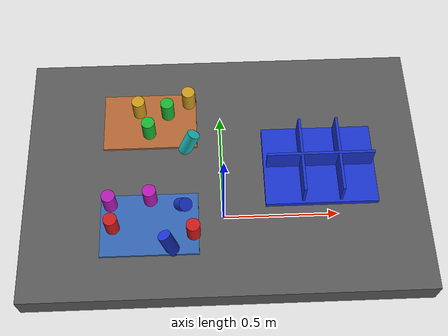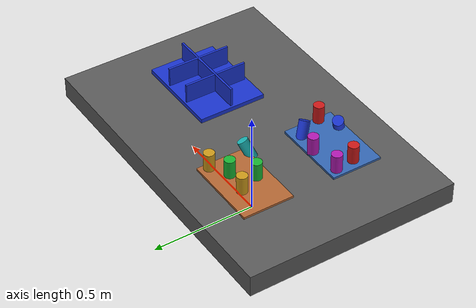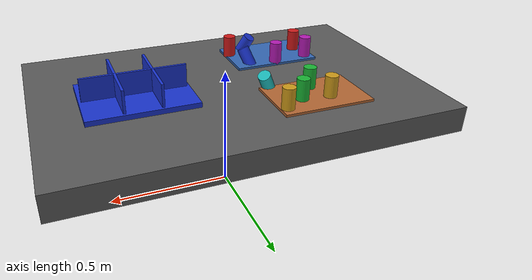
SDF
<?xml version="1.0" ?>
<sdf version="1.9">
  <!-- Standalone M1B scene.  The controller-backed Panda is spawned by the
       existing launch path; this file never alters the frozen M1A cube world. -->
  <world name="industrial_cylinder_v1">
    <physics name="bullet" type="bullet"><max_step_size>0.001</max_step_size><real_time_factor>1.0</real_time_factor></physics>
    <plugin name="gz::sim::systems::Physics" filename="gz-sim-physics-system"><engine><filename>gz-physics-bullet-featherstone-plugin</filename></engine></plugin>
    <plugin name="gz::sim::systems::UserCommands" filename="gz-sim-user-commands-system"/>
    <plugin name="gz::sim::systems::SceneBroadcaster" filename="gz-sim-scene-broadcaster-system"/>
    <plugin name="gz::sim::systems::Sensors" filename="gz-sim-sensors-system"><render_engine>ogre2</render_engine></plugin>
    <gravity>0 0 -9.81</gravity>
    <light type="directional" name="industrial_light"><pose>0 0 5 0 0 0</pose><direction>-0.3 0.2 -0.9</direction><diffuse>0.9 0.9 0.9 1</diffuse></light>
    <model name="industrial_work_table"><static>true</static><link name="link"><pose>0 0 0.4 0 0 0</pose><collision name="collision"><geometry><box><size>1.5 1.0 0.1</size></box></geometry></collision><visual name="visual"><geometry><box><size>1.5 1.0 0.1</size></box></geometry><material><diffuse>0.35 0.35 0.35 1</diffuse></material></visual></link></model>
    <model name="camera_fixture"><static>true</static><link name="camera_rgbd"><pose>-0.80 -0.80 1.40 0 0.77 0.93</pose><sensor name="front_rgbd" type="rgbd_camera"><always_on>1</always_on><update_rate>15</update_rate><topic>/xh/camera/rgbd</topic><camera><horizontal_fov>1.047</horizontal_fov><image><width>640</width><height>480</height><format>R8G8B8</format></image><clip><near>0.1</near><far>4.0</far></clip></camera></sensor></link></model>
    <model name="incoming_zone_a"><static>true</static><link name="link"><pose>-0.28 -0.22 0.455 0 0 0</pose><visual name="visual"><geometry><box><size>0.36 0.24 0.01</size></box></geometry><material><diffuse>0.2 0.4 0.7 1</diffuse></material></visual></link></model>
    <model name="incoming_zone_b"><static>true</static><link name="link"><pose>-0.28 0.22 0.455 0 0 0</pose><visual name="visual"><geometry><box><size>0.36 0.24 0.01</size></box></geometry><material><diffuse>0.7 0.4 0.2 1</diffuse></material></visual></link></model>
    <!-- M1B_RANDOM_PARTS_BEGIN -->
    <model name="cylinder_01"><pose>-0.4133 -0.2315 0.5000 0.0000 0.0000 2.5069</pose><link name="link"><inertial><mass>0.06</mass></inertial><collision name="collision"><geometry><cylinder><radius>0.025</radius><length>0.09</length></cylinder></geometry></collision><visual name="visual"><geometry><cylinder><radius>0.025</radius><length>0.09</length></cylinder></geometry><material><diffuse>0.800 0.100 0.100 1</diffuse><specular>0.15 0.15 0.15 1</specular></material></visual></link></model>
    <model name="cylinder_02"><pose>-0.2827 0.1628 0.5000 3.1416 0.0000 0.5550</pose><link name="link"><inertial><mass>0.06</mass></inertial><collision name="collision"><geometry><cylinder><radius>0.025</radius><length>0.09</length></cylinder></geometry></collision><visual name="visual"><geometry><cylinder><radius>0.025</radius><length>0.09</length></cylinder></geometry><material><diffuse>0.100 0.700 0.200 1</diffuse><specular>0.15 0.15 0.15 1</specular></material></visual></link></model>
    <model name="cylinder_03"><pose>-0.1578 -0.1542 0.4800 0.4500 -0.3000 1.1980</pose><link name="link"><inertial><mass>0.06</mass></inertial><collision name="collision"><geometry><cylinder><radius>0.025</radius><length>0.09</length></cylinder></geometry></collision><visual name="visual"><geometry><cylinder><radius>0.025</radius><length>0.09</length></cylinder></geometry><material><diffuse>0.100 0.200 0.800 1</diffuse><specular>0.15 0.15 0.15 1</specular></material></visual></link></model>
    <model name="cylinder_04"><pose>-0.3210 0.2587 0.5000 0.0000 0.0000 -1.0229</pose><link name="link"><inertial><mass>0.06</mass></inertial><collision name="collision"><geometry><cylinder><radius>0.025</radius><length>0.09</length></cylinder></geometry></collision><visual name="visual"><geometry><cylinder><radius>0.025</radius><length>0.09</length></cylinder></geometry><material><diffuse>0.800 0.600 0.100 1</diffuse><specular>0.15 0.15 0.15 1</specular></material></visual></link></model>
    <model name="cylinder_05"><pose>-0.2759 -0.1242 0.5000 3.1416 0.0000 -2.7777</pose><link name="link"><inertial><mass>0.06</mass></inertial><collision name="collision"><geometry><cylinder><radius>0.025</radius><length>0.09</length></cylinder></geometry></collision><visual name="visual"><geometry><cylinder><radius>0.025</radius><length>0.09</length></cylinder></geometry><material><diffuse>0.700 0.100 0.700 1</diffuse><specular>0.15 0.15 0.15 1</specular></material></visual></link></model>
    <model name="cylinder_06"><pose>-0.1296 0.1077 0.4800 0.4500 -0.3000 2.7141</pose><link name="link"><inertial><mass>0.06</mass></inertial><collision name="collision"><geometry><cylinder><radius>0.025</radius><length>0.09</length></cylinder></geometry></collision><visual name="visual"><geometry><cylinder><radius>0.025</radius><length>0.09</length></cylinder></geometry><material><diffuse>0.100 0.700 0.700 1</diffuse><specular>0.15 0.15 0.15 1</specular></material></visual></link></model>
    <model name="cylinder_07"><pose>-0.1185 -0.2633 0.5000 0.0000 0.0000 -1.5433</pose><link name="link"><inertial><mass>0.06</mass></inertial><collision name="collision"><geometry><cylinder><radius>0.025</radius><length>0.09</length></cylinder></geometry></collision><visual name="visual"><geometry><cylinder><radius>0.025</radius><length>0.09</length></cylinder></geometry><material><diffuse>0.800 0.100 0.100 1</diffuse><specular>0.15 0.15 0.15 1</specular></material></visual></link></model>
    <model name="cylinder_08"><pose>-0.2100 0.2467 0.5000 3.1416 0.0000 -0.7807</pose><link name="link"><inertial><mass>0.06</mass></inertial><collision name="collision"><geometry><cylinder><radius>0.025</radius><length>0.09</length></cylinder></geometry></collision><visual name="visual"><geometry><cylinder><radius>0.025</radius><length>0.09</length></cylinder></geometry><material><diffuse>0.100 0.700 0.200 1</diffuse><specular>0.15 0.15 0.15 1</specular></material></visual></link></model>
    <model name="cylinder_09"><pose>-0.2068 -0.3052 0.4800 0.4500 -0.3000 -1.7962</pose><link name="link"><inertial><mass>0.06</mass></inertial><collision name="collision"><geometry><cylinder><radius>0.025</radius><length>0.09</length></cylinder></geometry></collision><visual name="visual"><geometry><cylinder><radius>0.025</radius><length>0.09</length></cylinder></geometry><material><diffuse>0.100 0.200 0.800 1</diffuse><specular>0.15 0.15 0.15 1</specular></material></visual></link></model>
    <model name="cylinder_10"><pose>-0.1276 0.2949 0.5000 0.0000 0.0000 0.3464</pose><link name="link"><inertial><mass>0.06</mass></inertial><collision name="collision"><geometry><cylinder><radius>0.025</radius><length>0.09</length></cylinder></geometry></collision><visual name="visual"><geometry><cylinder><radius>0.025</radius><length>0.09</length></cylinder></geometry><material><diffuse>0.800 0.600 0.100 1</diffuse><specular>0.15 0.15 0.15 1</specular></material></visual></link></model>
    <model name="cylinder_11"><pose>-0.4233 -0.1400 0.5000 3.1416 0.0000 3.0437</pose><link name="link"><inertial><mass>0.06</mass></inertial><collision name="collision"><geometry><cylinder><radius>0.025</radius><length>0.09</length></cylinder></geometry></collision><visual name="visual"><geometry><cylinder><radius>0.025</radius><length>0.09</length></cylinder></geometry><material><diffuse>0.700 0.100 0.700 1</diffuse><specular>0.15 0.15 0.15 1</specular></material></visual></link></model>
    <!-- M1B_RANDOM_PARTS_END -->
    <model name="blue_partition_bin"><static>true</static><pose>0.36 0 0.45 0 0 0</pose><link name="link"><collision name="floor"><pose>0 0 0.01 0 0 0</pose><geometry><box><size>0.42 0.32 0.02</size></box></geometry></collision><visual name="floor_visual"><pose>0 0 0.01 0 0 0</pose><geometry><box><size>0.42 0.32 0.02</size></box></geometry><material><diffuse>0.1 0.2 0.8 1</diffuse></material></visual><visual name="row_divider"><pose>0 0 0.06 0 0 0</pose><geometry><box><size>0.40 0.01 0.10</size></box></geometry><material><diffuse>0.1 0.2 0.8 1</diffuse></material></visual><visual name="col_divider_a"><pose>-0.07 0 0.06 0 0 0</pose><geometry><box><size>0.01 0.30 0.10</size></box></geometry><material><diffuse>0.1 0.2 0.8 1</diffuse></material></visual><visual name="col_divider_b"><pose>0.07 0 0.06 0 0 0</pose><geometry><box><size>0.01 0.30 0.10</size></box></geometry><material><diffuse>0.1 0.2 0.8 1</diffuse></material></visual></link></model>
    <!-- Reserved only: second table, bin transport corridor, stackable-bin
         collision volume, and second arm mounting namespace. -->
  </world>
</sdf>
